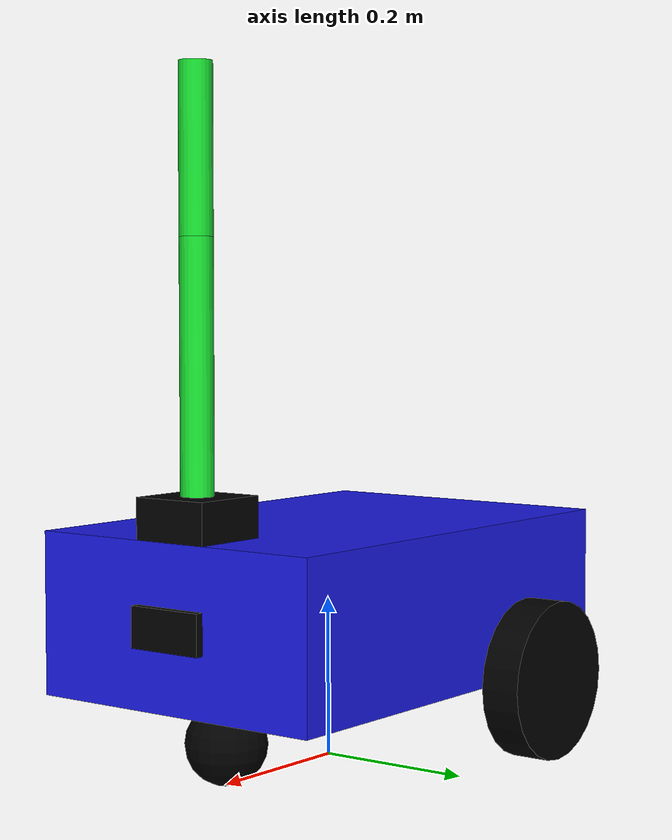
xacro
<?xml version="1.0"?>
<robot name="my_robot" xmlns:xacro="http://www.ros.org/wiki/xacro">

    <xacro:include filename="common_properties.xacro"/>
    <xacro:include filename="robot_base.xacro"/>
    <xacro:include filename="robot_base_gazebo.xacro"/>
    <xacro:include filename="camera.xacro"/>
    <xacro:include filename="robot_arm.xacro"/>
    <xacro:include filename="robot_arm_gazebo.xacro"/>

</robot>

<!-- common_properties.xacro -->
<robot xmlns:xacro="http://www.ros.org/wiki/xacro">

    <material name="blue">
        <color rgba="0.1 0.1 0.9 1"/>
    </material>

    <material name="green">
        <color rgba="0.1 0.9 0.2 1"/>
    </material>

    <material name="black">
        <color rgba="0 0 0 1"/>
    </material>

    <xacro:macro name="box_inertia" params="mass x y z o_xyz o_rpy">
        <inertial>
            <origin xyz="${o_xyz}" rpy="${o_rpy}"/>
            <mass value="${mass}"/>
            <inertia ixx="${(mass / 12.0) * (y*y + z*z)}" ixy="0" ixz="0"
                     iyy="${(mass / 12.0) * (x*x + z*z)}" iyz="0"
                     izz="${(mass / 12.0) * (x*x + y*y)}"/>
        </inertial>
    </xacro:macro>

    <xacro:macro name="cylinder_inertia" params="mass radius height o_xyz o_rpy">
        <inertial>
            <origin xyz="${o_xyz}" rpy="${o_rpy}"/>
            <mass value="${mass}"/>
            <inertia ixx="${(mass / 12.0) * (3*radius*radius + height*height)}" ixy="0" ixz="0"
                     iyy="${(mass / 12.0) * (3*radius*radius + height*height)}" iyz="0"
                     izz="${0.5 * mass * radius*radius}"/>
        </inertial>
    </xacro:macro>

    <xacro:macro name="sphere_inertia" params="mass radius o_xyz o_rpy">
        <inertial>
            <origin xyz="${o_xyz}" rpy="${o_rpy}"/>
            <mass value="${mass}"/>
            <inertia ixx="${0.4 * mass * radius*radius}" ixy="0" ixz="0"
                     iyy="${0.4 * mass * radius*radius}" iyz="0"
                     izz="${0.4 * mass * radius*radius}"/>
        </inertial>
    </xacro:macro>

</robot>

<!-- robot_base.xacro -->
<robot xmlns:xacro="http://www.ros.org/wiki/xacro">

    <xacro:property name="base_length" value="0.6"/>
    <xacro:property name="base_width" value="0.4"/>
    <xacro:property name="base_height" value="0.2"/>
    <xacro:property name="wheel_radius" value="0.1"/>
    <xacro:property name="wheel_width" value="0.05"/>
    <xacro:property name="robot_weight" value="5.0"/>
    <xacro:property name="wheel_weight" value="1.0"/>
    <xacro:property name="caster_wheel_weight" value="0.5"/>

    <link name="base_footprint"/>

    <link name="base_link">
        <visual>
            <geometry>
                <box size="${base_length} ${base_width} ${base_height}"/>
            </geometry>
            <origin xyz="0 0 ${base_height / 2.0}" rpy="0 0 0"/>
            <material name="blue"/>
        </visual>

        <collision>
            <geometry>
                <box size="${base_length} ${base_width} ${base_height}"/>
            </geometry>
            <origin xyz="0 0 ${base_height / 2.0}" rpy="0 0 0"/>
        </collision>

        <xacro:box_inertia mass="${robot_weight}" x="${base_length}" y="${base_width}" z="${base_height}"
                            o_xyz="0 0 ${base_height / 2.0}" o_rpy="0 0 0"/>
    </link>

    <xacro:macro name="create_wheel_link" params="prefix">
        <link name="${prefix}_wheel_link">
            <visual>
                <geometry>
                    <cylinder radius="${wheel_radius}" length="${wheel_width}"/>
                </geometry>
                <origin xyz="0 0 0" rpy="${pi / 2.0} 0 0"/>
                <material name="black"/>
            </visual>

            <collision>
                <geometry>
                    <sphere radius="${wheel_radius}"/>
                </geometry>
                <origin xyz="0 0 0" rpy="0 0 0"/>
            </collision>

            <xacro:cylinder_inertia mass="${wheel_weight}" radius="${wheel_radius}" height="${wheel_width}"
                                    o_xyz="0 0 0" o_rpy="${pi / 2.0} 0 0"/>
        </link>
    </xacro:macro>

    <xacro:create_wheel_link prefix="right"/>
    <xacro:create_wheel_link prefix="left"/>

    <link name="caster_wheel_link">
        <visual>
            <geometry>
                <sphere radius="${wheel_radius / 2.0}"/>
            </geometry>
            <origin xyz="0 0 0" rpy="0 0 0"/>
            <material name="black"/>
        </visual>

        <collision>
            <geometry>
                <sphere radius="${wheel_radius / 2.0}"/>
            </geometry>
            <origin xyz="0 0 0" rpy="0 0 0"/>
        </collision>

        <xacro:sphere_inertia mass="${caster_wheel_weight}" radius="${wheel_radius / 2.0}"
                                o_xyz="0 0 0" o_rpy="0 0 0"/>
    </link>

    <joint name="base_base_footprint_joint" type="fixed">
        <parent link="base_footprint"/>
        <child link="base_link"/>
        <origin xyz="0 0 ${wheel_radius}" rpy="0 0 0"/>
    </joint>

    <joint name="base_right_wheel_joint" type="continuous">
        <parent link="base_link"/>
        <child link="right_wheel_link"/>
        <origin xyz="${-base_length / 4.0} ${-(base_width + wheel_width) / 2.0} 0" rpy="0 0 0"/>
        <axis xyz="0 1 0"/>
    </joint>

    <joint name="base_left_wheel_joint" type="continuous">
        <parent link="base_link"/>
        <child link="left_wheel_link"/>
        <origin xyz="${-base_length / 4.0} ${(base_width + wheel_width) / 2.0} 0" rpy="0 0 0"/>
        <axis xyz="0 1 0"/>
    </joint>

    <joint name="base_caster_wheel_joint" type="fixed">
        <parent link="base_link"/>
        <child link="caster_wheel_link"/>
        <origin xyz="${base_length / 3.0} 0 -${wheel_radius / 2.0}" rpy="0 0 0"/>
    </joint>

</robot>

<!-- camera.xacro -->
<robot xmlns:xacro="http://www.ros.org/wiki/xacro">

    <xacro:property name="camera_length" value="0.01"/>
    <xacro:property name="camera_width" value="0.1"/>
    <xacro:property name="camera_height" value="0.05"/>
    <xacro:property name="camera_weight" value="0.01"/>

    <link name="camera_link">
        <visual>
            <geometry>
                <box size="${camera_length} ${camera_width} ${camera_height}"/>
            </geometry>
            <material name="black"/>
        </visual>

        <collision>
            <geometry>
                <box size="${camera_length} ${camera_width} ${camera_height}"/>
            </geometry>
        </collision>

        <xacro:box_inertia mass="${camera_weight}" x="${camera_length}" y="${camera_width}" z="${camera_height}"
                            o_xyz="0 0 0" o_rpy="0 0 0"/>
    </link>

    <link name="camera_link_optical"/>

    <joint name="base_camera_joint" type="fixed">
        <parent link="base_link"/>
        <child link="camera_link"/>
        <origin xyz="${(base_length + camera_length) / 2.0} 0 ${base_height / 2.0}" rpy="0 0 0"/>
    </joint>

    <joint name="camera_optical_joint" type="fixed">
        <parent link="camera_link"/>
        <child link="camera_link_optical"/>
        <origin xyz="0 0 0" rpy="${-pi / 2.0} 0 ${-pi / 2.0}"/>
    </joint>

    <gazebo reference="camera_link">
        <sensor type="camera" name="camera">
            <camera>
                <horizontal_fov>1.3962634</horizontal_fov>
                <image>
                    <width>640</width>
                    <height>480</height>
                    <format>R8G8B8</format>
                </image>
                <clip>
                    <near>0.1</near>
                    <far>15.0</far>
                </clip>
                <noise>
                    <type>gaussian</type>
                    <mean>0.0</mean>
                    <stddev>0.007</stddev>
                </noise>
                <optical_frame_id>camera_link_optical</optical_frame_id>
                <camera_info_topic>camera/camera_info</camera_info_topic>
            </camera>
            <always_on>1</always_on>
            <update_rate>20</update_rate>
            <visualize>true</visualize>
            <topic>camera/image_raw</topic>
        </sensor>
    </gazebo>

</robot>

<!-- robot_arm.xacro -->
<robot xmlns:xacro="http://www.ros.org/wiki/xacro">

    <xacro:property name="arm_base_length" value="0.1"/>
    <xacro:property name="arm_base_width" value="0.1"/>
    <xacro:property name="arm_base_height" value="0.05"/>
    <xacro:property name="arm_base_weight" value="0.01"/>

    <xacro:property name="arm_first_segment_radius" value="0.02"/>
    <xacro:property name="arm_first_segment_length" value="0.3"/>
    <xacro:property name="arm_first_segment_mass" value="0.1"/>
    <xacro:property name="arm_second_segment_radius" value="0.02"/>
    <xacro:property name="arm_second_segment_length" value="0.2"/>
    <xacro:property name="arm_second_segment_mass" value="0.05"/>

    <link name="arm_base_link">
        <visual>
            <geometry>
                <box size="${arm_base_length} ${arm_base_width} ${arm_base_height}"/>
            </geometry>
            <origin xyz="0 0 0" rpy="0 0 0"/>
            <material name="black"/>
        </visual>

        <collision>
            <geometry>
                <box size="${arm_base_length} ${arm_base_width} ${arm_base_height}"/>
            </geometry>
            <origin xyz="0 0 0" rpy="0 0 0"/>
        </collision>

        <xacro:box_inertia mass="${arm_base_weight}" x="${arm_base_length}" y="${arm_base_width}" z="${arm_base_height}"
                            o_xyz="0 0 0" o_rpy="0 0 0"/>
    </link>

    <link name="arm_first_segment_link">
        <visual>
            <geometry>
                <cylinder radius="${arm_first_segment_radius}" length="${arm_first_segment_length}"/>
            </geometry>
            <origin xyz="0 0 ${arm_first_segment_length / 2.0}" rpy="0 0 0"/>
            <material name="green"/>
        </visual>

        <collision>
            <geometry>
                <cylinder radius="${arm_first_segment_radius}" length="${arm_first_segment_length}"/>
            </geometry>
            <origin xyz="0 0 ${arm_first_segment_length / 2.0}" rpy="0 0 0"/>
        </collision>

        <xacro:cylinder_inertia mass="${arm_first_segment_mass}" radius="${arm_first_segment_radius}" height="${arm_first_segment_length}"
                            o_xyz="0 0 ${arm_first_segment_length / 2.0}" o_rpy="0 0 0"/>
    </link>

    <link name="arm_second_segment_link">
        <visual>
            <geometry>
                <cylinder radius="${arm_second_segment_radius}" length="${arm_second_segment_length}"/>
            </geometry>
            <origin xyz="0 0 ${arm_second_segment_length / 2.0}" rpy="0 0 0"/>
            <material name="green"/>
        </visual>

        <collision>
            <geometry>
                <cylinder radius="${arm_second_segment_radius}" length="${arm_second_segment_length}"/>
            </geometry>
            <origin xyz="0 0 ${arm_second_segment_length / 2.0}" rpy="0 0 0"/>
        </collision>

        <xacro:cylinder_inertia mass="${arm_second_segment_mass}" radius="${arm_second_segment_radius}" height="${arm_second_segment_length}"
                            o_xyz="0 0 ${arm_second_segment_length / 2.0}" o_rpy="0 0 0"/>
    </link>

    <joint name="base_arm_base_joint" type="fixed">
        <parent link="base_link"/>
        <child link="arm_base_link"/>
        <origin xyz="${(base_length - arm_base_length) / 2.0} 0 ${base_height + (arm_base_height / 2.0)}" rpy="0 0 0"/>
    </joint>

    <joint name="arm_base_arm_first_segment_joint" type="revolute">
        <parent link="arm_base_link"/>
        <child link="arm_first_segment_link"/>
        <origin xyz="0 0 ${arm_base_height / 2.0}" rpy="0 0 0"/>
        <axis xyz="0 1 0"/>
        <limit lower="${pi / 2.0}" upper="0" effort="100" velocity="100"/>
        <dynamics damping="0.3" friction="0.3"/>
    </joint>

    <joint name="arm_first_segment_arm_second_segment_joint" type="revolute">
        <parent link="arm_first_segment_link"/>
        <child link="arm_second_segment_link"/>
        <origin xyz="0 0 ${arm_first_segment_length}" rpy="0 0 0"/>
        <axis xyz="0 1 0"/>
        <limit lower="${pi / 2.0}" upper="${-pi / 2.0}" effort="100" velocity="100"/>
        <dynamics damping="0.3" friction="0.3"/>
    </joint>

</robot>
